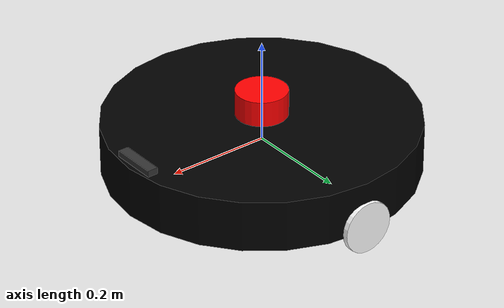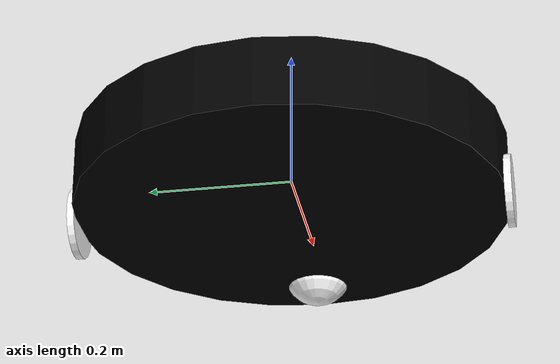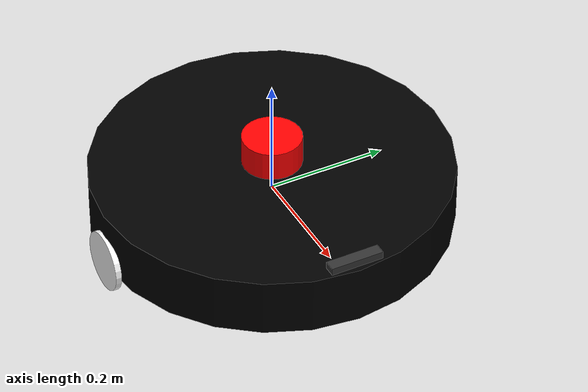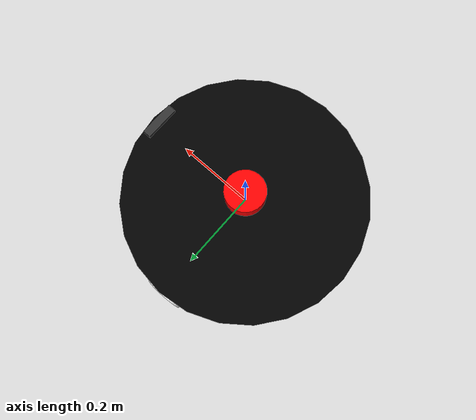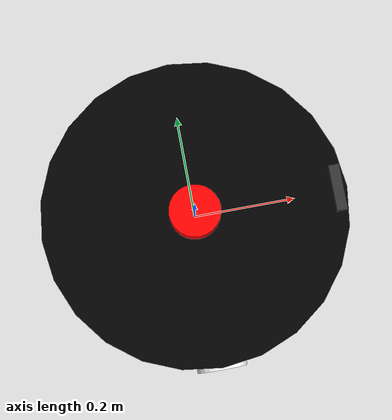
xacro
<?xml version="1.0"?>
<robot xmlns:xacro="http://www.ros.org/wiki/xacro" name="my_bot">

  	<!-- Bring in macro definitions -->
  	<xacro:include filename="robot_core.xacro"/>
  	<xacro:include filename="gazebo_control.xacro"/>
  	<xacro:include filename="lidar.xacro"/>
	<xacro:include filename="cameras.xacro"/>

  	<!-- Expand them into this robot -->
  	<xacro:robot_core/>
  	<xacro:gazebo_control/>
	<xacro:lidar/>
	<xacro:camera_sensor/>

</robot>

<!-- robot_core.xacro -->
<robot xmlns:xacro="http://www.ros.org/wiki/xacro" name="my_bot">

  <xacro:macro name="robot_core" params="">

    <!-- CHASSIS -->
    <link name="base_link">
      <visual>
        <origin xyz="0 0 0" rpy="0 0 0"/>
        <geometry>
          <cylinder length="0.1" radius="0.3"/>
        </geometry>
        <material name="black">
          <color rgba="0 0 0 1"/>
        </material>
      </visual>

      <collision>
        <origin xyz="0 0 0" rpy="0 0 0"/>
        <geometry>
          <cylinder length="0.1" radius="0.3"/>
        </geometry>
      </collision>

      <inertial>
        <origin xyz="0.15 0 0.075" rpy="0 0 0"/>
        <mass value="0.5"/>
        <inertia
          ixx="0.001666666666666667" ixy="0" ixz="0"
          iyy="0.001666666666666667" iyz="0"
          izz="0.0025000000000000005"/>
      </inertial>
    </link>

    <!-- Gazebo material for chassis -->
    <gazebo reference="base_link">
      <material>Gazebo/Black</material>
    </gazebo>

    <!-- RIGHT WHEEL -->
    <link name="right_wheel">
      <visual>
        <origin xyz="0 0 0" rpy="1.5708 1.5708 0"/>
        <geometry>
          <cylinder length="0.01" radius="0.05"/>
        </geometry>
        <material name="right_wheel_white">
          <color rgba="1 1 1 1"/>
        </material>
      </visual>

      <collision>
        <origin xyz="0 0 0" rpy="1.5708 1.5708 0"/>
        <geometry>
          <cylinder length="0.01" radius="0.05"/>
        </geometry>
      </collision>

      <inertial>
        <mass value="0.1"/>
        <origin xyz="0 0 0" rpy="0 0 0"/>
        <inertia
          ixx="7.58e-05" ixy="0" ixz="0"
          iyy="7.58e-05" iyz="0"
          izz="1.25e-04"/>
      </inertial>
    </link>

    <gazebo reference="right_wheel">
      <material>Gazebo/Blue</material>
    </gazebo>

    <!-- LEFT WHEEL -->
    <link name="left_wheel">
      <visual>
        <origin xyz="0 0 0" rpy="1.5708 1.5708 0"/>
        <geometry>
          <cylinder length="0.01" radius="0.05"/>
        </geometry>
        <material name="left_wheel_white">
          <color rgba="1 1 1 1"/>
        </material>
      </visual>

      <collision>
        <origin xyz="0 0 0" rpy="1.5708 1.5708 0"/>
        <geometry>
          <cylinder length="0.01" radius="0.05"/>
        </geometry>
      </collision>

      <inertial>
        <mass value="0.1"/>
        <origin xyz="0 0 0" rpy="0 0 0"/>
        <inertia
          ixx="7.58e-05" ixy="0" ixz="0"
          iyy="7.58e-05" iyz="0"
          izz="1.25e-04"/>
      </inertial>
    </link>

    <gazebo reference="left_wheel">
      <material>Gazebo/Blue</material>
    </gazebo>

    <!-- CASTER WHEEL -->
    <link name="caster_wheel">
      <visual>
        <geometry>
          <sphere radius="0.05"/>
        </geometry>
        <material name="caster_white">
          <color rgba="1 1 1 1"/>
        </material>
      </visual>

      <collision>
        <geometry>
          <sphere radius="0.05"/>
        </geometry>
      </collision>

      <inertial>
        <mass value="0.1"/>
        <origin xyz="0 0 0" rpy="0 0 0"/>
        <inertia
          ixx="1e-04" ixy="0" ixz="0"
          iyy="1e-04" iyz="0"
          izz="1e-04"/>
      </inertial>
    </link>

    <gazebo reference="caster_wheel">
      <material>Gazebo/Black</material>
      <mu1>0.001</mu1>
      <mu2>0.001</mu2>
    </gazebo>

    <!-- JOINTS -->
    <joint name="left_wheel_joint" type="continuous">
      <parent link="base_link"/>
      <child link="left_wheel"/>
      <origin xyz="0 0.3 -0.04" rpy="0 0 0"/>
      <axis xyz="0 1 0"/>
    </joint>

    <joint name="right_wheel_joint" type="continuous">
      <parent link="base_link"/>
      <child link="right_wheel"/>
      <origin xyz="0 -0.3 -0.04" rpy="0 0 0"/>
      <axis xyz="0 1 0"/>
    </joint>

    <joint name="caster_wheel_joint" type="fixed">
  	<parent link="base_link"/>
  	<child link="caster_wheel"/>
  	<origin xyz="0.24 0 -0.025" rpy="0 0 0"/>
    </joint>

  </xacro:macro>
</robot>

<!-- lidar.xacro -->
<robot xmlns:xacro="http://www.ros.org/wiki/xacro" name="my_bot">

  <xacro:macro name="lidar" params="">

    <!-- LIDAR LINK -->
    <link name="laser_frame">
      <visual>
        <origin xyz="0 0 0" rpy="0 0 0"/>
        <geometry>
          <cylinder length="0.05" radius="0.05"/>
        </geometry>
        <material name="lidar_color">
          <color rgba="1 0 0 1"/>
        </material>
      </visual>

      <collision>
        <origin xyz="0 0 0" rpy="0 0 0"/>
        <geometry>
          <cylinder length="0.05" radius="0.05"/>
        </geometry>
      </collision>

      <inertial>
        <mass value="0.1"/>
        <origin xyz="0 0 0" rpy="0 0 0"/>
        <inertia
          ixx="2.9166666666666664e-05" ixy="0" ixz="0"
          iyy="2.9166666666666664e-05" iyz="0"
          izz="1.25e-04"/>
      </inertial>
    </link>

    <!-- Gazebo material for LIDAR -->
    <gazebo reference="laser_frame">
      <material>Gazebo/Red</material>
    </gazebo>

    <!-- FIXED JOINT - Mounted on top of chassis -->
    <joint name="laser_joint" type="fixed">
      <parent link="base_link"/>
      <child link="laser_frame"/>
      <!-- Top of chassis (0.05) + half LIDAR height (0.025) = 0.075, using 0.08 for clearance -->
      <origin xyz="0 0 0.08" rpy="0 0 0"/>
    </joint>

    <!-- LIDAR SENSOR -->
    <gazebo reference="laser_frame">
      <sensor name="laser" type="ray">
        <pose>0 0 0 0 0 0</pose>
        <always_on>true</always_on>
        <update_rate>10</update_rate>
        <visualize>false</visualize> <!-- Turn off Gazebo ray visualization -->

        <ray>
          <scan>
            <horizontal>
              <samples>360</samples>
              <resolution>1</resolution>
              <min_angle>-3.14159</min_angle>
              <max_angle>3.14159</max_angle>
            </horizontal>
          </scan>
          <range>
            <!-- Increased min range to avoid ground detection -->
            <min>0.25</min>
            <max>10.0</max>
            <resolution>0.01</resolution>
          </range>
          <noise>
            <type>gaussian</type>
            <mean>0.0</mean>
            <stddev>0.01</stddev>
          </noise>
 	</ray>

        <!-- ROS 2 PLUGIN -->
        <plugin name="laser_controller" filename="libgazebo_ros_ray_sensor.so">
          <ros>
            <remapping>~/out:=scan</remapping>
          </ros>
          <output_type>sensor_msgs/LaserScan</output_type>
          <frame_name>laser_frame</frame_name>
        </plugin>

      </sensor>
    </gazebo>

  </xacro:macro>

</robot>

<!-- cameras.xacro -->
<robot xmlns:xacro="http://www.ros.org/wiki/xacro" name="my_bot">
  <!-- RGBD Camera -->
  <xacro:macro name="camera_sensor" params="">
    <!-- CAMERA LINK -->
    <link name="camera_link">
      <visual>
        <origin xyz="0 0 0" rpy="0 0 0"/>
        <geometry>
          <box size="0.02 0.09 0.025"/>
        </geometry>
        <material name="camera_color">
          <color rgba="0.2 0.2 0.2 1"/>
        </material>
      </visual>
      <collision>
        <origin xyz="0 0 0" rpy="0 0 0"/>
        <geometry>
          <box size="0.02 0.09 0.025"/>
        </geometry>
      </collision>
      <inertial>
        <mass value="0.15"/>
        <origin xyz="0 0 0" rpy="0 0 0"/>
        <inertia
          ixx="2.9166666666666664e-05" ixy="0" ixz="0"
          iyy="2.9166666666666664e-05" iyz="0"
          izz="1.25e-04"/>
      </inertial>
    </link>

    <!-- JOINT -->
    <joint name="camera_joint" type="fixed">
      <parent link="base_link"/>
      <child link="camera_link"/>
      <origin xyz="0.28 0 0.05" rpy="0 0 0"/>
    </joint>

    <!-- OPTICAL FRAME -->
    <link name="camera_optical_frame"/>

    <joint name="camera_optical_joint" type="fixed">
      <parent link="camera_link"/>
      <child link="camera_optical_frame"/>
      <origin xyz="0 0 0" rpy="-1.5708 0 -1.5708"/>
    </joint>

    <!-- Gazebo material -->
    <gazebo reference="camera_link">
      <material>Gazebo/Grey</material>
    </gazebo>

    <!-- SENSOR - Reference base_link since fixed joints get lumped -->
    <gazebo reference="base_link">
      <sensor name="rgbd_camera" type="depth">
        <pose>0.28 0 0.05 0 0 0</pose>
        <always_on>true</always_on>
        <update_rate>10</update_rate>
        <visualize>false</visualize>
        <camera>
          <horizontal_fov>1.3962634</horizontal_fov>
          <image>
            <width>640</width>
            <height>480</height>
            <format>R8G8B8</format>
          </image>
          <clip>
            <near>0.1</near>
            <far>10.0</far>
          </clip>
        </camera>
        <plugin name="camera_plugin" filename="libgazebo_ros_camera.so">
          <ros>
            <remapping>~/image_raw:=/camera/image_raw</remapping>
            <remapping>~/depth/image_raw:=/camera/depth/image_raw</remapping>
            <remapping>~/camera_info:=/camera/camera_info</remapping>
            <remapping>~/depth/camera_info:=/camera/depth/camera_info</remapping>
            <remapping>~/points:=/camera/points</remapping>
          </ros>
          <frame_name>camera_optical_frame</frame_name>
          <min_depth>0.1</min_depth>
          <max_depth>10.0</max_depth>
        </plugin>
      </sensor>
    </gazebo>

  </xacro:macro>
</robot>
